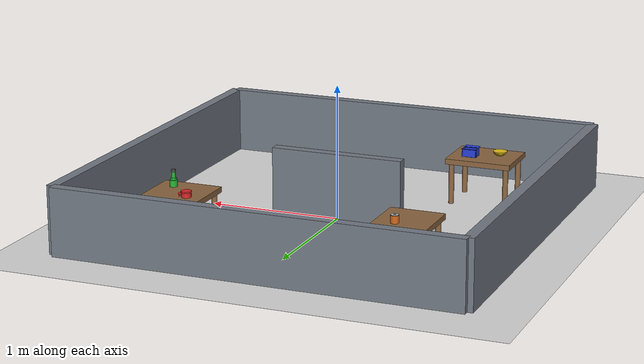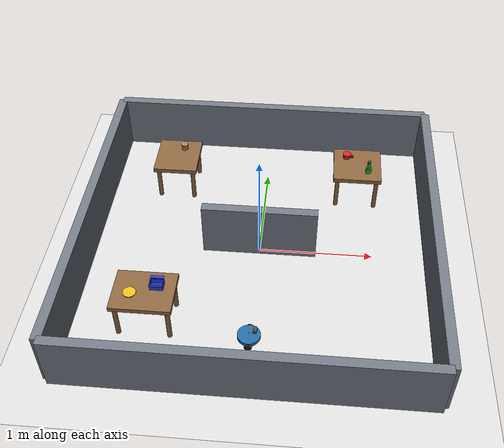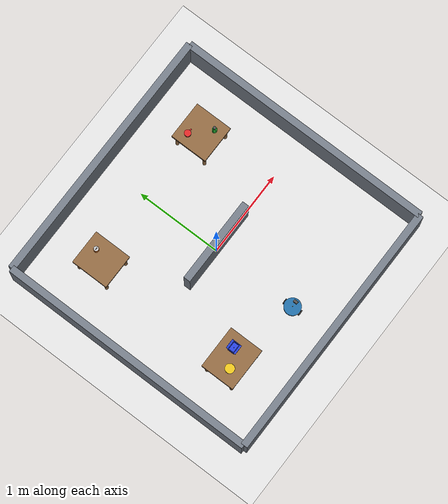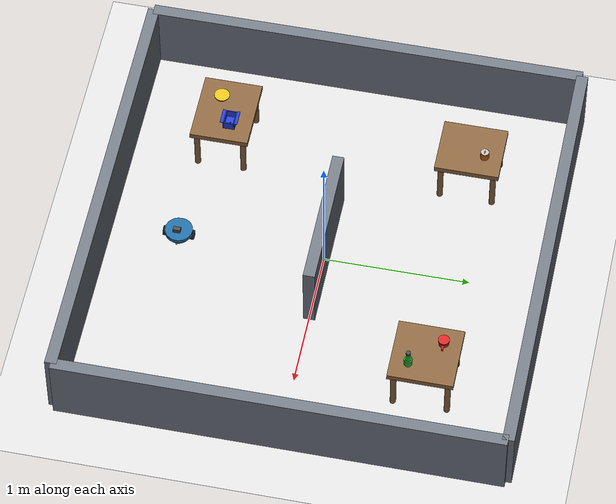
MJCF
<mujoco model="semantic_map_scene">
    <compiler angle="radian" autolimits="true"/>
    <option timestep="0.002" gravity="0 0 -9.81" integrator="implicitfast"/>

    <visual>
        <headlight ambient="0.35 0.35 0.35" diffuse="0.7 0.7 0.7"/>
        <global azimuth="-90" elevation="-90"/>
    </visual>

    <statistic center="0 0 0.3" extent="2.5"/>

    <default>
        <geom friction="1.2 0.05 0.01" condim="3"/>
    </default>

    <asset>
        <texture name="grid" type="2d" builtin="checker" rgb1="0.90 0.90 0.90" rgb2="0.82 0.82 0.82" width="256" height="256"/>
        <material name="mat_floor" texture="grid" texrepeat="8 8"/>
        <material name="mat_wall" rgba="0.45 0.48 0.52 1"/>
        <material name="mat_table" rgba="0.55 0.40 0.25 1"/>
        <material name="mat_bot" rgba="0.13 0.42 0.64 1"/>
        <material name="mat_wheel" rgba="0.08 0.08 0.08 1"/>
        <!-- Object materials (distinct colors for detection) -->
        <material name="mat_mug" rgba="0.85 0.15 0.15 1"/>
        <material name="mat_bottle" rgba="0.15 0.70 0.20 1"/>
        <material name="mat_box" rgba="0.15 0.25 0.85 1"/>
        <material name="mat_bowl" rgba="0.90 0.75 0.10 1"/>
        <material name="mat_can" rgba="0.80 0.40 0.10 1"/>
    </asset>

    <worldbody>
        <light name="sun" pos="0 0 3" dir="0 0 -1" diffuse="0.95 0.95 0.95" castshadow="false"/>
        <geom name="floor" type="plane" pos="0 0 0" size="5 5 0.1" material="mat_floor"/>

        <!-- Room walls: 3m x 3m -->
        <geom name="wall_north" type="box" pos="0 1.5 0.25" size="1.5 0.04 0.25" material="mat_wall"/>
        <geom name="wall_south" type="box" pos="0 -1.5 0.25" size="1.5 0.04 0.25" material="mat_wall"/>
        <geom name="wall_east" type="box" pos="1.5 0 0.25" size="0.04 1.5 0.25" material="mat_wall"/>
        <geom name="wall_west" type="box" pos="-1.5 0 0.25" size="0.04 1.5 0.25" material="mat_wall"/>

        <!-- Internal partition (horizontal, center) -->
        <geom name="partition_1" type="box" pos="0.0 0.0 0.25" size="0.5 0.04 0.25" material="mat_wall"/>

        <!-- Table 1: northeast -->
        <body name="table_1" pos="0.85 0.85 0">
            <geom name="table1_top" type="box" pos="0 0 0.33" size="0.22 0.22 0.02" material="mat_table" mass="10"/>
            <geom name="table1_leg1" type="cylinder" size="0.02 0.165" pos="0.18 0.18 0.165" material="mat_table"/>
            <geom name="table1_leg2" type="cylinder" size="0.02 0.165" pos="-0.18 0.18 0.165" material="mat_table"/>
            <geom name="table1_leg3" type="cylinder" size="0.02 0.165" pos="0.18 -0.18 0.165" material="mat_table"/>
            <geom name="table1_leg4" type="cylinder" size="0.02 0.165" pos="-0.18 -0.18 0.165" material="mat_table"/>
        </body>

        <!-- Table 2: southwest -->
        <body name="table_2" pos="-0.85 -0.85 0">
            <geom name="table2_top" type="box" pos="0 0 0.33" size="0.25 0.20 0.02" material="mat_table" mass="10"/>
            <geom name="table2_leg1" type="cylinder" size="0.02 0.165" pos="0.21 0.16 0.165" material="mat_table"/>
            <geom name="table2_leg2" type="cylinder" size="0.02 0.165" pos="-0.21 0.16 0.165" material="mat_table"/>
            <geom name="table2_leg3" type="cylinder" size="0.02 0.165" pos="0.21 -0.16 0.165" material="mat_table"/>
            <geom name="table2_leg4" type="cylinder" size="0.02 0.165" pos="-0.21 -0.16 0.165" material="mat_table"/>
        </body>

        <!-- Table 3: northwest -->
        <body name="table_3" pos="-0.85 0.85 0">
            <geom name="table3_top" type="box" pos="0 0 0.33" size="0.20 0.22 0.02" material="mat_table" mass="10"/>
            <geom name="table3_leg1" type="cylinder" size="0.02 0.165" pos="0.16 0.18 0.165" material="mat_table"/>
            <geom name="table3_leg2" type="cylinder" size="0.02 0.165" pos="-0.16 0.18 0.165" material="mat_table"/>
            <geom name="table3_leg3" type="cylinder" size="0.02 0.165" pos="0.16 -0.18 0.165" material="mat_table"/>
            <geom name="table3_leg4" type="cylinder" size="0.02 0.165" pos="-0.16 -0.18 0.165" material="mat_table"/>
        </body>

        <!-- ======== Objects on tables ======== -->
        <!-- Mug on table 1 (cylinder body + torus rim + box handle) -->
        <body name="obj_mug" pos="0.75 0.95 0.35">
            <geom name="mug_body" type="cylinder" size="0.035 0.04" material="mat_mug" mass="0.25"/>
            <geom name="mug_rim" type="cylinder" size="0.038 0.005" pos="0 0 0.04" material="mat_mug" mass="0.02"/>
            <geom name="mug_handle" type="capsule" fromto="0.035 0 0.02 0.055 0 0.02" size="0.008" material="mat_mug" mass="0.03" contype="0" conaffinity="0"/>
            <geom name="mug_handle_top" type="capsule" fromto="0.035 0 0.02 0.035 0 -0.015" size="0.006" material="mat_mug" mass="0.01" contype="0" conaffinity="0"/>
            <geom name="mug_handle_bot" type="capsule" fromto="0.055 0 0.02 0.055 0 -0.015" size="0.006" material="mat_mug" mass="0.01" contype="0" conaffinity="0"/>
            <site name="obj_mug_site" pos="0 0 0" size="0.005" rgba="1 0 0 0.5"/>
        </body>

        <!-- Bottle on table 1 (wide base + tapered neck + cap) -->
        <body name="obj_bottle" pos="0.95 0.75 0.35">
            <geom name="bottle_base" type="cylinder" size="0.028 0.05" material="mat_bottle" mass="0.3"/>
            <geom name="bottle_neck" type="cylinder" size="0.014 0.03" pos="0 0 0.08" material="mat_bottle" mass="0.05"/>
            <geom name="bottle_shoulder" type="cylinder" size="0.021 0.01" pos="0 0 0.055" material="mat_bottle" mass="0.03" contype="0" conaffinity="0"/>
            <geom name="bottle_cap" type="cylinder" size="0.016 0.008" pos="0 0 0.118" rgba="0.3 0.3 0.3 1" mass="0.02" contype="0" conaffinity="0"/>
            <site name="obj_bottle_site" pos="0 0 0" size="0.005" rgba="0 1 0 0.5"/>
        </body>

        <!-- Box on table 2 (open-top box with visible interior) -->
        <body name="obj_box" pos="-0.75 -0.80 0.35">
            <!-- Bottom panel -->
            <geom name="box_bottom" type="box" size="0.055 0.04 0.002" pos="0 0 0" material="mat_box" mass="0.2"/>
            <!-- Four walls of the box -->
            <geom name="box_front"  type="box" size="0.055 0.003 0.03" pos="0 0.037 0.03" material="mat_box" mass="0.05"/>
            <geom name="box_back"   type="box" size="0.055 0.003 0.03" pos="0 -0.037 0.03" material="mat_box" mass="0.05"/>
            <geom name="box_left"   type="box" size="0.003 0.04 0.03" pos="-0.052 0 0.03" material="mat_box" mass="0.05"/>
            <geom name="box_right"  type="box" size="0.003 0.04 0.03" pos="0.052 0 0.03" material="mat_box" mass="0.05"/>
            <!-- Lid flaps (slightly open, angled outward) -->
            <geom name="box_flap1" type="box" size="0.055 0.015 0.002" pos="0 0.045 0.06" euler="0.3 0 0" material="mat_box" mass="0.02" contype="0" conaffinity="0"/>
            <geom name="box_flap2" type="box" size="0.055 0.015 0.002" pos="0 -0.045 0.06" euler="-0.3 0 0" material="mat_box" mass="0.02" contype="0" conaffinity="0"/>
            <site name="obj_box_site" pos="0 0 0" size="0.005" rgba="0 0 1 0.5"/>
        </body>

        <!-- Bowl on table 2 (concave bowl with dark interior) -->
        <body name="obj_bowl" pos="-0.95 -0.90 0.35">
            <!-- Flat base disc -->
            <geom name="bowl_base" type="cylinder" size="0.025 0.003" pos="0 0 0" material="mat_bowl" mass="0.08"/>
            <!-- Stacked rings expanding outward to form concave profile -->
            <geom name="bowl_ring1" type="cylinder" size="0.030 0.004" pos="0 0 0.006" material="mat_bowl" mass="0.03" contype="0" conaffinity="0"/>
            <geom name="bowl_ring2" type="cylinder" size="0.037 0.004" pos="0 0 0.012" material="mat_bowl" mass="0.03" contype="0" conaffinity="0"/>
            <geom name="bowl_ring3" type="cylinder" size="0.044 0.004" pos="0 0 0.018" material="mat_bowl" mass="0.03" contype="0" conaffinity="0"/>
            <geom name="bowl_ring4" type="cylinder" size="0.050 0.004" pos="0 0 0.024" material="mat_bowl" mass="0.03" contype="0" conaffinity="0"/>
            <!-- Rim at top (slightly wider) -->
            <geom name="bowl_rim" type="cylinder" size="0.053 0.003" pos="0 0 0.030" material="mat_bowl" mass="0.02" contype="0" conaffinity="0"/>
            <site name="obj_bowl_site" pos="0 0 0" size="0.005" rgba="1 1 0 0.5"/>
        </body>

        <!-- Can on table 3 (cylinder body + top/bottom rims + pull tab) -->
        <body name="obj_can" pos="-0.80 0.95 0.35">
            <geom name="can_body" type="cylinder" size="0.03 0.055" material="mat_can" mass="0.30"/>
            <geom name="can_top_rim" type="cylinder" size="0.028 0.003" pos="0 0 0.055" rgba="0.75 0.75 0.75 1" mass="0.02" contype="0" conaffinity="0"/>
            <geom name="can_bot_rim" type="cylinder" size="0.031 0.003" pos="0 0 -0.055" rgba="0.75 0.75 0.75 1" mass="0.02" contype="0" conaffinity="0"/>
            <geom name="can_tab" type="capsule" fromto="-0.01 0 0.058 0.01 0 0.058" size="0.004" rgba="0.7 0.7 0.7 1" mass="0.01" contype="0" conaffinity="0"/>
            <site name="obj_can_site" pos="0 0 0" size="0.005" rgba="1 0.5 0 0.5"/>
        </body>

        <!-- ======== TurtleBot ======== -->
        <body name="turtlebot" pos="0 -1.0 0.036">
            <freejoint name="tb_free"/>
            <inertial pos="0 0 0" mass="2.2" diaginertia="0.02 0.02 0.03"/>
            <geom name="tb_chassis_col" type="cylinder" size="0.078 0.020" material="mat_bot" contype="0" conaffinity="0"/>
            <geom name="tb_chassis_vis" type="cylinder" size="0.095 0.014" pos="0 0 0.024" material="mat_bot" contype="0" conaffinity="0"/>
            <geom name="tb_caster_front" type="sphere" pos="0.075 0 -0.025" size="0.008" mass="0.02" friction="0.02 0.001 0.0001" condim="3"/>
            <geom name="tb_caster_back" type="sphere" pos="-0.075 0 -0.025" size="0.008" mass="0.02" friction="0.02 0.001 0.0001" condim="3"/>

            <body name="tb_left_wheel" pos="0 0.09 0">
                <joint name="tb_left_wheel_joint" type="hinge" axis="0 1 0" damping="0.05" frictionloss="0.01"/>
                <geom name="tb_left_wheel_geom" type="cylinder" size="0.033 0.016" euler="1.57079632679 0 0" material="mat_wheel" friction="1.8 0.02 0.001" condim="6"/>
            </body>

            <body name="tb_right_wheel" pos="0 -0.09 0">
                <joint name="tb_right_wheel_joint" type="hinge" axis="0 1 0" damping="0.05" frictionloss="0.01"/>
                <geom name="tb_right_wheel_geom" type="cylinder" size="0.033 0.016" euler="1.57079632679 0 0" material="mat_wheel" friction="1.8 0.02 0.001" condim="6"/>
            </body>

            <site name="tb_base_site" pos="0 0 0" size="0.005" rgba="0 1 0 1"/>

            <!-- Camera mounted on top of robot, looking forward -->
            <body name="tb_camera" pos="0.05 0 0.10">
                <site name="tb_camera_site" pos="0 0 0" size="0.01" rgba="0.5 0.5 1 1"/>
                <geom name="tb_camera_vis" type="box" size="0.015 0.025 0.015" rgba="0.3 0.3 0.3 1" contype="0" conaffinity="0" mass="0.05"/>
            </body>

            <!-- LiDAR sensors (1.2 rad / ~69 degree fan, 61 beams, matching detector FOV) -->
            <body name="tb_laser_head" pos="0 0 0.06">
                <site name="tb_laser_mount" pos="0 0 0" size="0.004" rgba="1 0.6 0 1"/>
                <site name="tb_laser_00" pos="0 0 0" zaxis="0.825335615 -0.564642473 0" size="0.002" rgba="1 0.2 0.2 0.2"/>
                <site name="tb_laser_01" pos="0 0 0" zaxis="0.836462650 -0.548023937 0" size="0.002" rgba="1 0.2 0.2 0.2"/>
                <site name="tb_laser_02" pos="0 0 0" zaxis="0.847255111 -0.531186198 0" size="0.002" rgba="1 0.2 0.2 0.2"/>
                <site name="tb_laser_03" pos="0 0 0" zaxis="0.857708681 -0.514135992 0" size="0.002" rgba="1 0.2 0.2 0.2"/>
                <site name="tb_laser_04" pos="0 0 0" zaxis="0.867819180 -0.496880138 0" size="0.002" rgba="1 0.2 0.2 0.2"/>
                <site name="tb_laser_05" pos="0 0 0" zaxis="0.877582562 -0.479425539 0" size="0.002" rgba="1 0.2 0.2 0.2"/>
                <site name="tb_laser_06" pos="0 0 0" zaxis="0.886994923 -0.461779176 0" size="0.002" rgba="1 0.2 0.2 0.2"/>
                <site name="tb_laser_07" pos="0 0 0" zaxis="0.896052498 -0.443948107 0" size="0.002" rgba="1 0.2 0.2 0.2"/>
                <site name="tb_laser_08" pos="0 0 0" zaxis="0.904751663 -0.425939465 0" size="0.002" rgba="1 0.2 0.2 0.2"/>
                <site name="tb_laser_09" pos="0 0 0" zaxis="0.913088940 -0.407760453 0" size="0.002" rgba="1 0.2 0.2 0.2"/>
                <site name="tb_laser_10" pos="0 0 0" zaxis="0.921060994 -0.389418342 0" size="0.002" rgba="1 0.2 0.2 0.2"/>
                <site name="tb_laser_11" pos="0 0 0" zaxis="0.928664636 -0.370920469 0" size="0.002" rgba="1 0.2 0.2 0.2"/>
                <site name="tb_laser_12" pos="0 0 0" zaxis="0.935896824 -0.352274233 0" size="0.002" rgba="1 0.2 0.2 0.2"/>
                <site name="tb_laser_13" pos="0 0 0" zaxis="0.942754666 -0.333487092 0" size="0.002" rgba="1 0.2 0.2 0.2"/>
                <site name="tb_laser_14" pos="0 0 0" zaxis="0.949235418 -0.314566561 0" size="0.002" rgba="1 0.2 0.2 0.2"/>
                <site name="tb_laser_15" pos="0 0 0" zaxis="0.955336489 -0.295520207 0" size="0.002" rgba="1 0.2 0.2 0.2"/>
                <site name="tb_laser_16" pos="0 0 0" zaxis="0.961055438 -0.276355649 0" size="0.002" rgba="1 0.2 0.2 0.2"/>
                <site name="tb_laser_17" pos="0 0 0" zaxis="0.966389978 -0.257080552 0" size="0.002" rgba="1 0.2 0.2 0.2"/>
                <site name="tb_laser_18" pos="0 0 0" zaxis="0.971337975 -0.237702626 0" size="0.002" rgba="1 0.2 0.2 0.2"/>
                <site name="tb_laser_19" pos="0 0 0" zaxis="0.975897449 -0.218229623 0" size="0.002" rgba="1 0.2 0.2 0.2"/>
                <site name="tb_laser_20" pos="0 0 0" zaxis="0.980066578 -0.198669331 0" size="0.002" rgba="1 0.2 0.2 0.2"/>
                <site name="tb_laser_21" pos="0 0 0" zaxis="0.983843693 -0.179029573 0" size="0.002" rgba="1 0.2 0.2 0.2"/>
                <site name="tb_laser_22" pos="0 0 0" zaxis="0.987227283 -0.159318207 0" size="0.002" rgba="1 0.2 0.2 0.2"/>
                <site name="tb_laser_23" pos="0 0 0" zaxis="0.990215996 -0.139543115 0" size="0.002" rgba="1 0.2 0.2 0.2"/>
                <site name="tb_laser_24" pos="0 0 0" zaxis="0.992808636 -0.119712207 0" size="0.002" rgba="1 0.2 0.2 0.2"/>
                <site name="tb_laser_25" pos="0 0 0" zaxis="0.995004165 -0.099833417 0" size="0.002" rgba="1 0.2 0.2 0.2"/>
                <site name="tb_laser_26" pos="0 0 0" zaxis="0.996801706 -0.079914694 0" size="0.002" rgba="1 0.2 0.2 0.2"/>
                <site name="tb_laser_27" pos="0 0 0" zaxis="0.998200540 -0.059964006 0" size="0.002" rgba="1 0.2 0.2 0.2"/>
                <site name="tb_laser_28" pos="0 0 0" zaxis="0.999200107 -0.039989334 0" size="0.002" rgba="1 0.2 0.2 0.2"/>
                <site name="tb_laser_29" pos="0 0 0" zaxis="0.999800007 -0.019998667 0" size="0.002" rgba="1 0.2 0.2 0.2"/>
                <site name="tb_laser_30" pos="0 0 0" zaxis="1.000000000 0.000000000 0" size="0.002" rgba="1 0.2 0.2 0.2"/>
                <site name="tb_laser_31" pos="0 0 0" zaxis="0.999800007 0.019998667 0" size="0.002" rgba="1 0.2 0.2 0.2"/>
                <site name="tb_laser_32" pos="0 0 0" zaxis="0.999200107 0.039989334 0" size="0.002" rgba="1 0.2 0.2 0.2"/>
                <site name="tb_laser_33" pos="0 0 0" zaxis="0.998200540 0.059964006 0" size="0.002" rgba="1 0.2 0.2 0.2"/>
                <site name="tb_laser_34" pos="0 0 0" zaxis="0.996801706 0.079914694 0" size="0.002" rgba="1 0.2 0.2 0.2"/>
                <site name="tb_laser_35" pos="0 0 0" zaxis="0.995004165 0.099833417 0" size="0.002" rgba="1 0.2 0.2 0.2"/>
                <site name="tb_laser_36" pos="0 0 0" zaxis="0.992808636 0.119712207 0" size="0.002" rgba="1 0.2 0.2 0.2"/>
                <site name="tb_laser_37" pos="0 0 0" zaxis="0.990215996 0.139543115 0" size="0.002" rgba="1 0.2 0.2 0.2"/>
                <site name="tb_laser_38" pos="0 0 0" zaxis="0.987227283 0.159318207 0" size="0.002" rgba="1 0.2 0.2 0.2"/>
                <site name="tb_laser_39" pos="0 0 0" zaxis="0.983843693 0.179029573 0" size="0.002" rgba="1 0.2 0.2 0.2"/>
                <site name="tb_laser_40" pos="0 0 0" zaxis="0.980066578 0.198669331 0" size="0.002" rgba="1 0.2 0.2 0.2"/>
                <site name="tb_laser_41" pos="0 0 0" zaxis="0.975897449 0.218229623 0" size="0.002" rgba="1 0.2 0.2 0.2"/>
                <site name="tb_laser_42" pos="0 0 0" zaxis="0.971337975 0.237702626 0" size="0.002" rgba="1 0.2 0.2 0.2"/>
                <site name="tb_laser_43" pos="0 0 0" zaxis="0.966389978 0.257080552 0" size="0.002" rgba="1 0.2 0.2 0.2"/>
                <site name="tb_laser_44" pos="0 0 0" zaxis="0.961055438 0.276355649 0" size="0.002" rgba="1 0.2 0.2 0.2"/>
                <site name="tb_laser_45" pos="0 0 0" zaxis="0.955336489 0.295520207 0" size="0.002" rgba="1 0.2 0.2 0.2"/>
                <site name="tb_laser_46" pos="0 0 0" zaxis="0.949235418 0.314566561 0" size="0.002" rgba="1 0.2 0.2 0.2"/>
                <site name="tb_laser_47" pos="0 0 0" zaxis="0.942754666 0.333487092 0" size="0.002" rgba="1 0.2 0.2 0.2"/>
                <site name="tb_laser_48" pos="0 0 0" zaxis="0.935896824 0.352274233 0" size="0.002" rgba="1 0.2 0.2 0.2"/>
                <site name="tb_laser_49" pos="0 0 0" zaxis="0.928664636 0.370920469 0" size="0.002" rgba="1 0.2 0.2 0.2"/>
                <site name="tb_laser_50" pos="0 0 0" zaxis="0.921060994 0.389418342 0" size="0.002" rgba="1 0.2 0.2 0.2"/>
                <site name="tb_laser_51" pos="0 0 0" zaxis="0.913088940 0.407760453 0" size="0.002" rgba="1 0.2 0.2 0.2"/>
                <site name="tb_laser_52" pos="0 0 0" zaxis="0.904751663 0.425939465 0" size="0.002" rgba="1 0.2 0.2 0.2"/>
                <site name="tb_laser_53" pos="0 0 0" zaxis="0.896052498 0.443948107 0" size="0.002" rgba="1 0.2 0.2 0.2"/>
                <site name="tb_laser_54" pos="0 0 0" zaxis="0.886994923 0.461779176 0" size="0.002" rgba="1 0.2 0.2 0.2"/>
                <site name="tb_laser_55" pos="0 0 0" zaxis="0.877582562 0.479425539 0" size="0.002" rgba="1 0.2 0.2 0.2"/>
                <site name="tb_laser_56" pos="0 0 0" zaxis="0.867819180 0.496880138 0" size="0.002" rgba="1 0.2 0.2 0.2"/>
                <site name="tb_laser_57" pos="0 0 0" zaxis="0.857708681 0.514135992 0" size="0.002" rgba="1 0.2 0.2 0.2"/>
                <site name="tb_laser_58" pos="0 0 0" zaxis="0.847255111 0.531186198 0" size="0.002" rgba="1 0.2 0.2 0.2"/>
                <site name="tb_laser_59" pos="0 0 0" zaxis="0.836462650 0.548023937 0" size="0.002" rgba="1 0.2 0.2 0.2"/>
                <site name="tb_laser_60" pos="0 0 0" zaxis="0.825335615 0.564642473 0" size="0.002" rgba="1 0.2 0.2 0.2"/>
            </body>
        </body>
    </worldbody>

    <actuator>
        <velocity name="tb_left_wheel_act" joint="tb_left_wheel_joint" kv="2.0" ctrlrange="-20 20" forcerange="-3 3"/>
        <velocity name="tb_right_wheel_act" joint="tb_right_wheel_joint" kv="2.0" ctrlrange="-20 20" forcerange="-3 3"/>
    </actuator>

    <sensor>
        <framepos name="tb_base_pos" objtype="site" objname="tb_base_site"/>
        <framequat name="tb_base_quat" objtype="site" objname="tb_base_site"/>
        <!-- Camera pose sensor -->
        <framepos name="tb_camera_pos" objtype="site" objname="tb_camera_site"/>
        <framequat name="tb_camera_quat" objtype="site" objname="tb_camera_site"/>
        <!-- Object position sensors (ground truth for detector) -->
        <framepos name="obj_mug_pos" objtype="site" objname="obj_mug_site"/>
        <framepos name="obj_bottle_pos" objtype="site" objname="obj_bottle_site"/>
        <framepos name="obj_box_pos" objtype="site" objname="obj_box_site"/>
        <framepos name="obj_bowl_pos" objtype="site" objname="obj_bowl_site"/>
        <framepos name="obj_can_pos" objtype="site" objname="obj_can_site"/>
        <!-- LiDAR rangefinders -->
        <rangefinder name="tb_laser_00" site="tb_laser_00"/>
        <rangefinder name="tb_laser_01" site="tb_laser_01"/>
        <rangefinder name="tb_laser_02" site="tb_laser_02"/>
        <rangefinder name="tb_laser_03" site="tb_laser_03"/>
        <rangefinder name="tb_laser_04" site="tb_laser_04"/>
        <rangefinder name="tb_laser_05" site="tb_laser_05"/>
        <rangefinder name="tb_laser_06" site="tb_laser_06"/>
        <rangefinder name="tb_laser_07" site="tb_laser_07"/>
        <rangefinder name="tb_laser_08" site="tb_laser_08"/>
        <rangefinder name="tb_laser_09" site="tb_laser_09"/>
        <rangefinder name="tb_laser_10" site="tb_laser_10"/>
        <rangefinder name="tb_laser_11" site="tb_laser_11"/>
        <rangefinder name="tb_laser_12" site="tb_laser_12"/>
        <rangefinder name="tb_laser_13" site="tb_laser_13"/>
        <rangefinder name="tb_laser_14" site="tb_laser_14"/>
        <rangefinder name="tb_laser_15" site="tb_laser_15"/>
        <rangefinder name="tb_laser_16" site="tb_laser_16"/>
        <rangefinder name="tb_laser_17" site="tb_laser_17"/>
        <rangefinder name="tb_laser_18" site="tb_laser_18"/>
        <rangefinder name="tb_laser_19" site="tb_laser_19"/>
        <rangefinder name="tb_laser_20" site="tb_laser_20"/>
        <rangefinder name="tb_laser_21" site="tb_laser_21"/>
        <rangefinder name="tb_laser_22" site="tb_laser_22"/>
        <rangefinder name="tb_laser_23" site="tb_laser_23"/>
        <rangefinder name="tb_laser_24" site="tb_laser_24"/>
        <rangefinder name="tb_laser_25" site="tb_laser_25"/>
        <rangefinder name="tb_laser_26" site="tb_laser_26"/>
        <rangefinder name="tb_laser_27" site="tb_laser_27"/>
        <rangefinder name="tb_laser_28" site="tb_laser_28"/>
        <rangefinder name="tb_laser_29" site="tb_laser_29"/>
        <rangefinder name="tb_laser_30" site="tb_laser_30"/>
        <rangefinder name="tb_laser_31" site="tb_laser_31"/>
        <rangefinder name="tb_laser_32" site="tb_laser_32"/>
        <rangefinder name="tb_laser_33" site="tb_laser_33"/>
        <rangefinder name="tb_laser_34" site="tb_laser_34"/>
        <rangefinder name="tb_laser_35" site="tb_laser_35"/>
        <rangefinder name="tb_laser_36" site="tb_laser_36"/>
        <rangefinder name="tb_laser_37" site="tb_laser_37"/>
        <rangefinder name="tb_laser_38" site="tb_laser_38"/>
        <rangefinder name="tb_laser_39" site="tb_laser_39"/>
        <rangefinder name="tb_laser_40" site="tb_laser_40"/>
        <rangefinder name="tb_laser_41" site="tb_laser_41"/>
        <rangefinder name="tb_laser_42" site="tb_laser_42"/>
        <rangefinder name="tb_laser_43" site="tb_laser_43"/>
        <rangefinder name="tb_laser_44" site="tb_laser_44"/>
        <rangefinder name="tb_laser_45" site="tb_laser_45"/>
        <rangefinder name="tb_laser_46" site="tb_laser_46"/>
        <rangefinder name="tb_laser_47" site="tb_laser_47"/>
        <rangefinder name="tb_laser_48" site="tb_laser_48"/>
        <rangefinder name="tb_laser_49" site="tb_laser_49"/>
        <rangefinder name="tb_laser_50" site="tb_laser_50"/>
        <rangefinder name="tb_laser_51" site="tb_laser_51"/>
        <rangefinder name="tb_laser_52" site="tb_laser_52"/>
        <rangefinder name="tb_laser_53" site="tb_laser_53"/>
        <rangefinder name="tb_laser_54" site="tb_laser_54"/>
        <rangefinder name="tb_laser_55" site="tb_laser_55"/>
        <rangefinder name="tb_laser_56" site="tb_laser_56"/>
        <rangefinder name="tb_laser_57" site="tb_laser_57"/>
        <rangefinder name="tb_laser_58" site="tb_laser_58"/>
        <rangefinder name="tb_laser_59" site="tb_laser_59"/>
        <rangefinder name="tb_laser_60" site="tb_laser_60"/>
    </sensor>

    <keyframe>
        <key name="home" qpos="0 -1.0 0.036 1 0 0 0 0 0" ctrl="0 0"/>
    </keyframe>
</mujoco>
